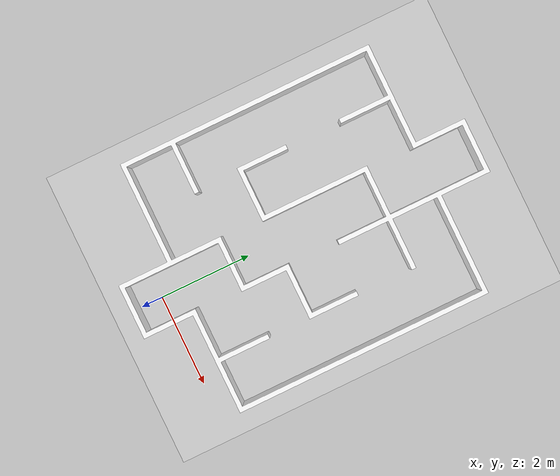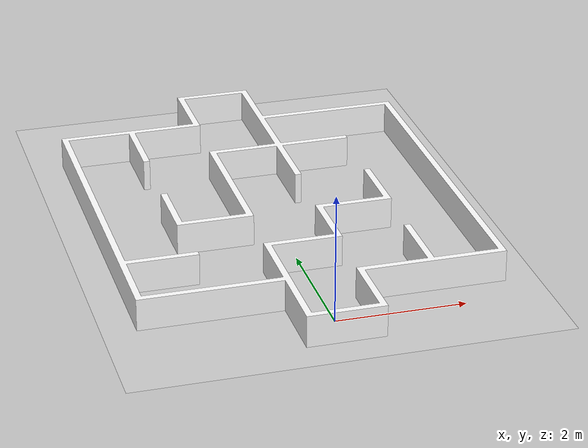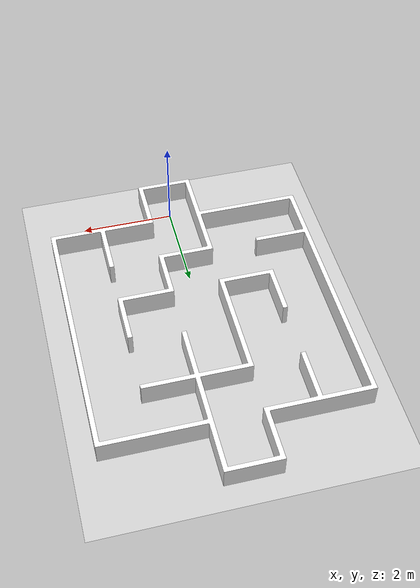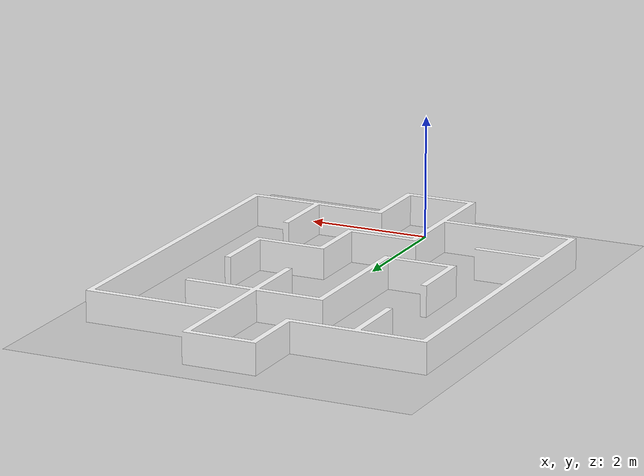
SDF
<?xml version='1.0'?>
<sdf version="1.6">
  <world name="default">

    <include>
      <uri>model://ground_plane</uri>
    </include>

    <include>
      <uri>model://sun</uri>
    </include>

    <scene>
      <shadows>false</shadows>
    </scene>

    <gui fullscreen='0'>
      <camera name='user_camera'>
        <pose frame=''>0.319654 -0.235002 9.29441 0 1.5138 0.009599</pose>
        <view_controller>orbit</view_controller>
        <projection_type>perspective</projection_type>
      </camera>
    </gui>

    <gravity>0 0 -9.8</gravity>
    <physics type="ode">
      <real_time_update_rate>1000.0</real_time_update_rate>
      <max_step_size>0.001</max_step_size>
      <real_time_factor>1</real_time_factor>
      <ode>
        <solver>
          <type>quick</type>
          <iters>150</iters>
          <precon_iters>0</precon_iters>
          <sor>1.400000</sor>
          <use_dynamic_moi_rescaling>1</use_dynamic_moi_rescaling>
        </solver>
        <constraints>
          <cfm>0.00001</cfm>
          <erp>0.2</erp>
          <contact_max_correcting_vel>2000.000000</contact_max_correcting_vel>
          <contact_surface_layer>0.01000</contact_surface_layer>
        </constraints>
      </ode>
    </physics>

    <model name="Test Maze 5x5">
      <static>1</static>
      <include>
        <uri>model://test_maze_5x5</uri>
      </include>
    </model>

  </world>
</sdf>

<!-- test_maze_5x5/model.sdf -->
<sdf version="1.8">

  <model name="Test Maze 5x5">
  <static>1</static>
    <link name="link">

      <visual name="maze">
        <geometry>
          <mesh>
            <uri>model://test_maze_5x5/meshes/model.dae</uri>
            <submesh>
              <name>maze</name>
            </submesh>
          </mesh>
        </geometry>
        <material>
          <diffuse>1.0 1.0 1.0 1.0</diffuse>
          <specular>0.0 0.0 0.0 1.0</specular>
          <pbr>
            <metal/>
          </pbr>
        </material>
      </visual>

      <collision name="collision">
        <geometry>
          <mesh>
            <uri>model://test_maze_5x5/meshes/model.dae</uri>
          </mesh>
        </geometry>
        <surface/>
        <contact/>
        <collide_bitmask>0x01</collide_bitmask>
      </collision>

    </link>
  </model>

</sdf>
